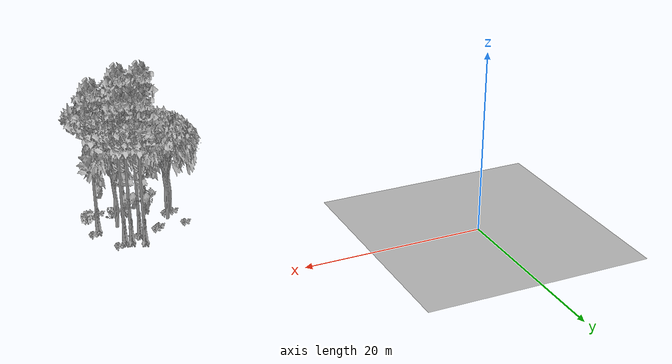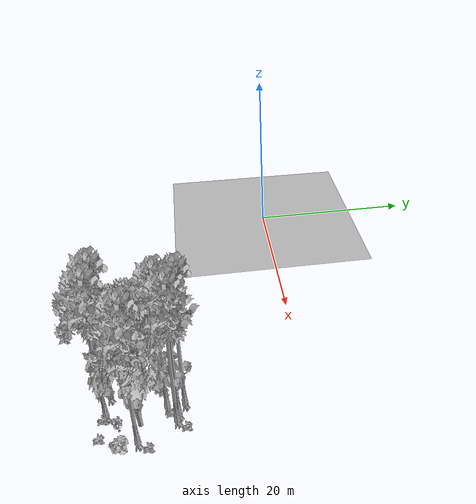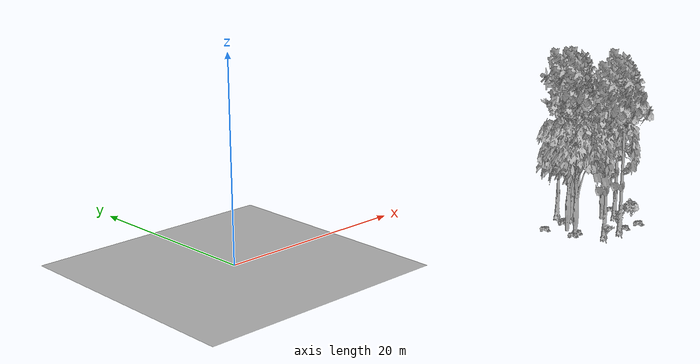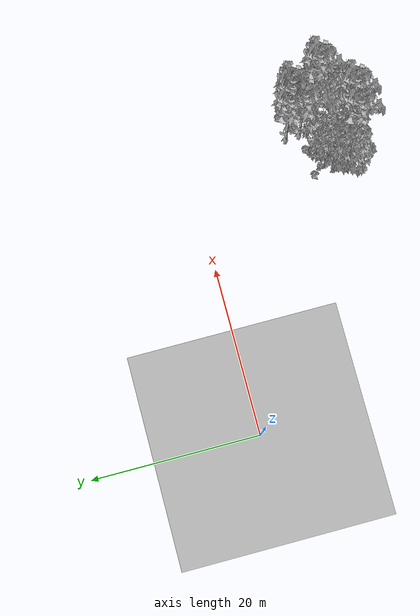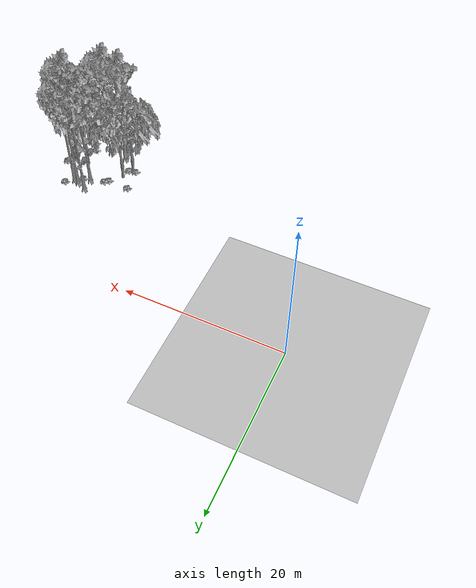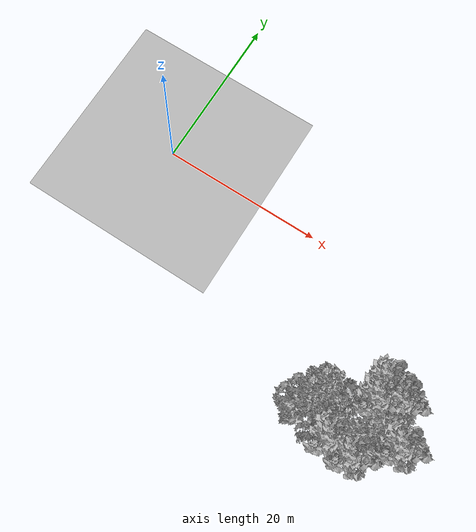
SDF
<sdf version="1.7">
 <world name="default">
  <model name="ground_plane">
   <static>1</static>
   <link name="link">
    <collision name="collision">
     <pose>-50 0 0 0 -0 0</pose>
     <geometry><plane><normal>0 0 1</normal><size>80 80</size></plane></geometry>
     <surface><contact><ode><min_depth>0.01</min_depth><max_vel>0</max_vel></ode></contact></surface>
    </collision>
    <visual name="grass">
     <cast_shadows>0</cast_shadows>
     <geometry>
      <mesh>
       <scale>0.46714285714285714 0.46714285714285714 0.1</scale>
       <uri>file://grass_plane/meshes/grass_plane.dae</uri>
      </mesh>
     </geometry>
    </visual>
   </link>
  </model>
  <model name="Tree 14">
   <static>1</static>
   <pose>37.12071062400305 -16.538050935977992 0 1.57079 -0 0</pose>
   <link name="link">
    <collision name="collision">
     <geometry><mesh><scale>3.5 5 3.5</scale><uri>model://tree_9/meshes/tree_9.obj</uri></mesh></geometry>
    </collision>
    <visual name="visual">
     <geometry><mesh><scale>3.5 5 3.5</scale><uri>model://tree_9/meshes/tree_9.obj</uri></mesh></geometry>
    </visual>
   </link>
  </model>
  <model name="Tree 25">
   <static>1</static>
   <pose>29.49814966262211 -16.064405199576626 0 1.57079 -0 0</pose>
   <link name="link">
    <collision name="collision">
     <geometry><mesh><scale>3.5 5 3.5</scale><uri>model://tree_2/meshes/tree_2.obj</uri></mesh></geometry>
    </collision>
    <visual name="visual">
     <geometry><mesh><scale>3.5 5 3.5</scale><uri>model://tree_2/meshes/tree_2.obj</uri></mesh></geometry>
    </visual>
   </link>
  </model>
  <model name="Tree 72">
   <static>1</static>
   <pose>33.29203087042106 -13.863999350595009 0 1.57079 -0 0</pose>
   <link name="link">
    <collision name="collision">
     <geometry><mesh><scale>3.5 5 3.5</scale><uri>model://tree_9/meshes/tree_9.obj</uri></mesh></geometry>
    </collision>
    <visual name="visual">
     <geometry><mesh><scale>3.5 5 3.5</scale><uri>model://tree_9/meshes/tree_9.obj</uri></mesh></geometry>
    </visual>
   </link>
  </model>
  <model name="Tree 115">
   <static>1</static>
   <pose>33.17923718455657 -12.170464158145737 0 1.57079 -0 0</pose>
   <link name="link">
    <collision name="collision">
     <geometry><mesh><scale>3.5 5 3.5</scale><uri>model://tree_9/meshes/tree_9.obj</uri></mesh></geometry>
    </collision>
    <visual name="visual">
     <geometry><mesh><scale>3.5 5 3.5</scale><uri>model://tree_9/meshes/tree_9.obj</uri></mesh></geometry>
    </visual>
   </link>
  </model>
  <model name="Tree 130">
   <static>1</static>
   <pose>28.81276122138108 -17.50150995108445 0 1.57079 -0 0</pose>
   <link name="link">
    <collision name="collision">
     <geometry><mesh><scale>3.5 5 3.5</scale><uri>model://tree_2/meshes/tree_2.obj</uri></mesh></geometry>
    </collision>
    <visual name="visual">
     <geometry><mesh><scale>3.5 5 3.5</scale><uri>model://tree_2/meshes/tree_2.obj</uri></mesh></geometry>
    </visual>
   </link>
  </model>
  <model name="Tree 132">
   <static>1</static>
   <pose>35.14104026067734 -12.953062835010812 0 1.57079 -0 0</pose>
   <link name="link">
    <collision name="collision">
     <geometry><mesh><scale>3.5 5 3.5</scale><uri>model://tree_9/meshes/tree_9.obj</uri></mesh></geometry>
    </collision>
    <visual name="visual">
     <geometry><mesh><scale>3.5 5 3.5</scale><uri>model://tree_9/meshes/tree_9.obj</uri></mesh></geometry>
    </visual>
   </link>
  </model>
  <model name="Tree 137">
   <static>1</static>
   <pose>34.97779501419723 -16.370235156182062 0 1.57079 -0 0</pose>
   <link name="link">
    <collision name="collision">
     <geometry><mesh><scale>3.5 5 3.5</scale><uri>model://tree_2/meshes/tree_2.obj</uri></mesh></geometry>
    </collision>
    <visual name="visual">
     <geometry><mesh><scale>3.5 5 3.5</scale><uri>model://tree_2/meshes/tree_2.obj</uri></mesh></geometry>
    </visual>
   </link>
  </model>
  <model name="Tree 230">
   <static>1</static>
   <pose>31.17381365580431 -19.347272661399266 0 1.57079 -0 0</pose>
   <link name="link">
    <collision name="collision">
     <geometry><mesh><scale>3.5 5 3.5</scale><uri>model://tree_9/meshes/tree_9.obj</uri></mesh></geometry>
    </collision>
    <visual name="visual">
     <geometry><mesh><scale>3.5 5 3.5</scale><uri>model://tree_9/meshes/tree_9.obj</uri></mesh></geometry>
    </visual>
   </link>
  </model>
  <model name="Tree 367">
   <static>1</static>
   <pose>33.51233881537482 -19.58932186528097 0 1.57079 -0 0</pose>
   <link name="link">
    <collision name="collision">
     <geometry><mesh><scale>3.5 5 3.5</scale><uri>model://tree_9/meshes/tree_9.obj</uri></mesh></geometry>
    </collision>
    <visual name="visual">
     <geometry><mesh><scale>3.5 5 3.5</scale><uri>model://tree_9/meshes/tree_9.obj</uri></mesh></geometry>
    </visual>
   </link>
  </model>
  <model name="Tree 491">
   <static>1</static>
   <pose>34.46789076649645 -12.760129362634089 0 1.57079 -0 0</pose>
   <link name="link">
    <collision name="collision">
     <geometry><mesh><scale>3.5 5 3.5</scale><uri>model://tree_9/meshes/tree_9.obj</uri></mesh></geometry>
    </collision>
    <visual name="visual">
     <geometry><mesh><scale>3.5 5 3.5</scale><uri>model://tree_9/meshes/tree_9.obj</uri></mesh></geometry>
    </visual>
   </link>
  </model>
  <model name="Bush 20">
   <static>1</static>
   <pose>35.97608136829608 -12.078927971355256 0 1.57079 -0 0</pose>
   <link name="link">
    <collision name="collision">
     <geometry><mesh><scale>2 2 2</scale><uri>model://bush_2/meshes/bush_2.obj</uri></mesh></geometry>
     <surface><contact><collide_without_contact>false</collide_without_contact></contact></surface>
    </collision>
    <visual name="visual">
     <geometry><mesh><scale>2 2 2</scale><uri>model://bush_2/meshes/bush_2.obj</uri></mesh></geometry>
    </visual>
   </link>
  </model>
  <model name="Bush 27">
   <static>1</static>
   <pose>33.94921947995081 -19.891476564696777 0 1.57079 -0 0</pose>
   <link name="link">
    <collision name="collision">
     <geometry><mesh><scale>2 2 2</scale><uri>model://bush_2/meshes/bush_2.obj</uri></mesh></geometry>
     <surface><contact><collide_without_contact>false</collide_without_contact></contact></surface>
    </collision>
    <visual name="visual">
     <geometry><mesh><scale>2 2 2</scale><uri>model://bush_2/meshes/bush_2.obj</uri></mesh></geometry>
    </visual>
   </link>
  </model>
  <model name="Bush 123">
   <static>1</static>
   <pose>30.16951857004895 -20.301471796334994 0 1.57079 -0 0</pose>
   <link name="link">
    <collision name="collision">
     <geometry><mesh><scale>2 2 2</scale><uri>model://bush_5/meshes/bush_5.obj</uri></mesh></geometry>
     <surface><contact><collide_without_contact>false</collide_without_contact></contact></surface>
    </collision>
    <visual name="visual">
     <geometry><mesh><scale>2 2 2</scale><uri>model://bush_5/meshes/bush_5.obj</uri></mesh></geometry>
    </visual>
   </link>
  </model>
  <model name="Bush 182">
   <static>1</static>
   <pose>29.453602898260385 -17.342277017595347 0 1.57079 -0 0</pose>
   <link name="link">
    <collision name="collision">
     <geometry><mesh><scale>2 2 2</scale><uri>model://bush_2/meshes/bush_2.obj</uri></mesh></geometry>
     <surface><contact><collide_without_contact>false</collide_without_contact></contact></surface>
    </collision>
    <visual name="visual">
     <geometry><mesh><scale>2 2 2</scale><uri>model://bush_2/meshes/bush_2.obj</uri></mesh></geometry>
    </visual>
   </link>
  </model>
  <model name="Bush 243">
   <static>1</static>
   <pose>35.095823552450796 -18.4844247754965 0 1.57079 -0 0</pose>
   <link name="link">
    <collision name="collision">
     <geometry><mesh><scale>2 2 2</scale><uri>model://bush_4/meshes/bush_4.obj</uri></mesh></geometry>
     <surface><contact><collide_without_contact>false</collide_without_contact></contact></surface>
    </collision>
    <visual name="visual">
     <geometry><mesh><scale>2 2 2</scale><uri>model://bush_4/meshes/bush_4.obj</uri></mesh></geometry>
    </visual>
   </link>
  </model>
  <model name="Bush 249">
   <static>1</static>
   <pose>30.908778088213865 -14.63186992071341 0 1.57079 -0 0</pose>
   <link name="link">
    <collision name="collision">
     <geometry><mesh><scale>2 2 2</scale><uri>model://bush_2/meshes/bush_2.obj</uri></mesh></geometry>
     <surface><contact><collide_without_contact>false</collide_without_contact></contact></surface>
    </collision>
    <visual name="visual">
     <geometry><mesh><scale>2 2 2</scale><uri>model://bush_2/meshes/bush_2.obj</uri></mesh></geometry>
    </visual>
   </link>
  </model>
  <model name="Bush 274">
   <static>1</static>
   <pose>37.79764793171002 -18.179602467224186 0 1.57079 -0 0</pose>
   <link name="link">
    <collision name="collision">
     <geometry><mesh><scale>2 2 2</scale><uri>model://bush_1/meshes/bush_1.obj</uri></mesh></geometry>
     <surface><contact><collide_without_contact>false</collide_without_contact></contact></surface>
    </collision>
    <visual name="visual">
     <geometry><mesh><scale>2 2 2</scale><uri>model://bush_1/meshes/bush_1.obj</uri></mesh></geometry>
    </visual>
   </link>
  </model>
  <model name="Bush 300">
   <static>1</static>
   <pose>34.101492208915246 -13.515382572792838 0 1.57079 -0 0</pose>
   <link name="link">
    <collision name="collision">
     <geometry><mesh><scale>2 2 2</scale><uri>model://bush_2/meshes/bush_2.obj</uri></mesh></geometry>
     <surface><contact><collide_without_contact>false</collide_without_contact></contact></surface>
    </collision>
    <visual name="visual">
     <geometry><mesh><scale>2 2 2</scale><uri>model://bush_2/meshes/bush_2.obj</uri></mesh></geometry>
    </visual>
   </link>
  </model>
  <model name="Bush 316">
   <static>1</static>
   <pose>31.361113840284432 -14.224685078853252 0 1.57079 -0 0</pose>
   <link name="link">
    <collision name="collision">
     <geometry><mesh><scale>2 2 2</scale><uri>model://bush_2/meshes/bush_2.obj</uri></mesh></geometry>
     <surface><contact><collide_without_contact>false</collide_without_contact></contact></surface>
    </collision>
    <visual name="visual">
     <geometry><mesh><scale>2 2 2</scale><uri>model://bush_2/meshes/bush_2.obj</uri></mesh></geometry>
    </visual>
   </link>
  </model>
  <model name="Bush 453">
   <static>1</static>
   <pose>28.54718033984419 -17.517093534561987 0 1.57079 -0 0</pose>
   <link name="link">
    <collision name="collision">
     <geometry><mesh><scale>2 2 2</scale><uri>model://bush_2/meshes/bush_2.obj</uri></mesh></geometry>
     <surface><contact><collide_without_contact>false</collide_without_contact></contact></surface>
    </collision>
    <visual name="visual">
     <geometry><mesh><scale>2 2 2</scale><uri>model://bush_2/meshes/bush_2.obj</uri></mesh></geometry>
    </visual>
   </link>
  </model>
  <model name="Bush 541">
   <static>1</static>
   <pose>37.81290937277771 -15.574598334154743 0 1.57079 -0 0</pose>
   <link name="link">
    <collision name="collision">
     <geometry><mesh><scale>2 2 2</scale><uri>model://bush_2/meshes/bush_2.obj</uri></mesh></geometry>
     <surface><contact><collide_without_contact>false</collide_without_contact></contact></surface>
    </collision>
    <visual name="visual">
     <geometry><mesh><scale>2 2 2</scale><uri>model://bush_2/meshes/bush_2.obj</uri></mesh></geometry>
    </visual>
   </link>
  </model>
  <model name="Bush 596">
   <static>1</static>
   <pose>28.069572467098183 -14.451267219770727 0 1.57079 -0 0</pose>
   <link name="link">
    <collision name="collision">
     <geometry><mesh><scale>2 2 2</scale><uri>model://bush_2/meshes/bush_2.obj</uri></mesh></geometry>
     <surface><contact><collide_without_contact>false</collide_without_contact></contact></surface>
    </collision>
    <visual name="visual">
     <geometry><mesh><scale>2 2 2</scale><uri>model://bush_2/meshes/bush_2.obj</uri></mesh></geometry>
    </visual>
   </link>
  </model>
  <model name="Bush 600">
   <static>1</static>
   <pose>36.13590181524533 -20.096205653231614 0 1.57079 -0 0</pose>
   <link name="link">
    <collision name="collision">
     <geometry><mesh><scale>2 2 2</scale><uri>model://bush_2/meshes/bush_2.obj</uri></mesh></geometry>
     <surface><contact><collide_without_contact>false</collide_without_contact></contact></surface>
    </collision>
    <visual name="visual">
     <geometry><mesh><scale>2 2 2</scale><uri>model://bush_2/meshes/bush_2.obj</uri></mesh></geometry>
    </visual>
   </link>
  </model>
 </world>
</sdf>
